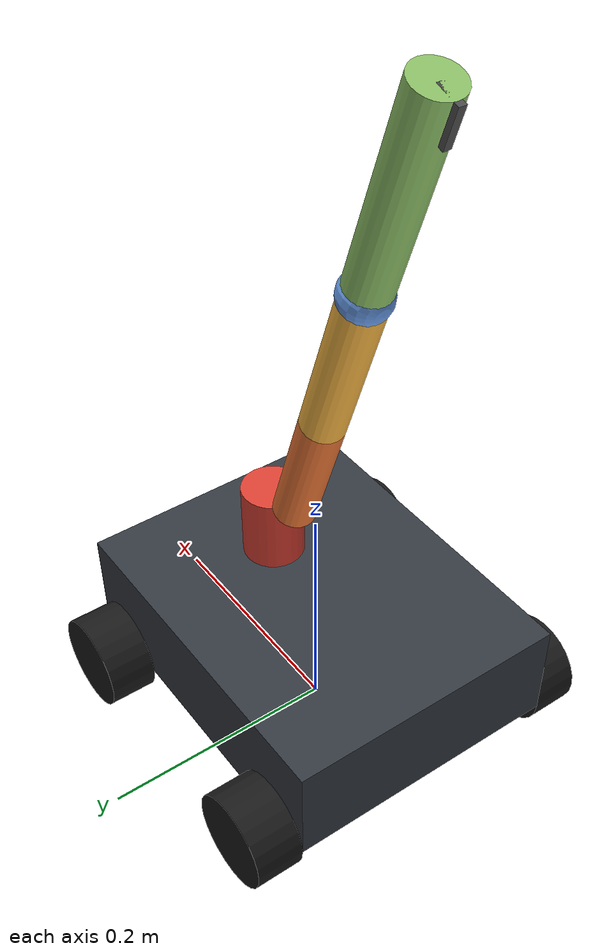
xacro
<?xml version="1.0"?>
<robot xmlns:xacro="http://www.ros.org/wiki/xacro" name="tomato_robot">

  <xacro:arg name="z0_mm" default="119.5"/>
  <xacro:arg name="d0_mm" default="-31.5"/>
  <xacro:arg name="l1_mm" default="116.5"/>
  <xacro:arg name="l2_mm" default="138.0"/>
  <xacro:arg name="l3_mm" default="168.0"/>

  <!-- ── 팔 마운트 (mm, 도) ── 기본값 근거는 위와 같음(so101_geometry.yaml의
       mount.z=76.5 2026-08-31 실측; mount.x=60.0은 아직 미실측 근사치 그대로) -->
  <xacro:arg name="mount_x_mm" default="60.0"/>
  <xacro:arg name="mount_y_mm" default="0.0"/>
  <xacro:arg name="mount_z_mm" default="76.5"/>
  <xacro:arg name="mount_yaw_deg" default="0.0"/>
  <!-- 케이스 회전판(base_yaw) — mount_x/y/z는 **회전판 축**이 지나는 자리이고, 팔(pan 축)은
       거기서 turntable_dx_mm만큼 앞에 앉는다. 0은 미실측(두 축이 같다고 가정).
       한계는 config.BASE_YAW_LIMIT_DEG(소프트), 서보 EEPROM이 ±90°(하드). -->
  <xacro:arg name="turntable_dx_mm" default="0.0"/>
  <xacro:arg name="yaw_limit_deg" default="85.0"/>

  <!-- ── 차체 (mm) ── -->
  <xacro:arg name="base_length_mm" default="300.0"/>
  <xacro:arg name="base_width_mm" default="240.0"/>
  <xacro:arg name="base_height_mm" default="90.0"/>
  <xacro:arg name="wheel_radius_mm" default="40.0"/>

  <!-- ── 관절 한계 (도) ── so101_geometry.yaml:limits_deg 및 NormLimits 실측치 정합화 (T88) -->
  <xacro:arg name="pan_min_deg"   default="-105.27"/>
  <xacro:arg name="pan_max_deg"   default="133.32"/>
  <xacro:arg name="lift_min_deg"  default="7.94"/>
  <xacro:arg name="lift_max_deg"  default="209.59"/>
  <xacro:arg name="elbow_min_deg" default="-38.90"/>
  <xacro:arg name="elbow_max_deg" default="163.61"/>
  <xacro:arg name="wflex_min_deg" default="-99.98"/>
  <xacro:arg name="wflex_max_deg" default="103.64"/>
  <xacro:arg name="wroll_min_deg" default="-97.90"/>
  <xacro:arg name="wroll_max_deg" default="97.90"/>
  <xacro:arg name="grip_min_deg"  default="0.0"/>
  <xacro:arg name="grip_max_deg"  default="45.0"/>

  <xacro:property name="mm" value="0.001"/>
  <xacro:property name="d2r" value="${pi/180.0}"/>

  <xacro:property name="bl" value="${$(arg base_length_mm) * mm}"/>
  <xacro:property name="bw" value="${$(arg base_width_mm) * mm}"/>
  <xacro:property name="bh" value="${$(arg base_height_mm) * mm}"/>
  <xacro:property name="wr" value="${$(arg wheel_radius_mm) * mm}"/>

  <xacro:include filename="$(find tomato_description)/urdf/so101_arm.xacro"/>

  <link name="base_link">
    <visual>
      <origin xyz="0 0 ${bh/2 + wr}"/>
      <geometry><box size="${bl} ${bw} ${bh}"/></geometry>
      <material name="m_chassis"><color rgba="0.2 0.22 0.25 1"/></material>
    </visual>
    <collision>
      <origin xyz="0 0 ${bh/2 + wr}"/>
      <geometry><box size="${bl} ${bw} ${bh}"/></geometry>
    </collision>
    <inertial>
      <mass value="4.0"/>
      <origin xyz="0 0 ${bh/2 + wr}"/>
      <inertia ixx="0.03" ixy="0" ixz="0" iyy="0.05" iyz="0" izz="0.06"/>
    </inertial>
  </link>

  <!-- 바퀴는 **보여 주기만** 한다. 회전 관절로 두지 않는 이유는 엔코더가 없어서
       각도를 알 방법이 없기 때문이다 — 모르는 값을 0으로 발행하면 rviz에서
       "안 구르는 바퀴"가 아니라 "구르지 않는다는 거짓말"이 된다.
       엔코더가 생기면(보드계약 v2 `enc`) 그때 관절로 승격한다. -->
  <xacro:macro name="wheel" params="name x y">
    <link name="${name}">
      <visual>
        <origin xyz="0 0 0" rpy="${pi/2} 0 0"/>
        <geometry><cylinder radius="${wr}" length="0.04"/></geometry>
        <material name="m_wheel"><color rgba="0.1 0.1 0.1 1"/></material>
      </visual>
    </link>
    <joint name="${name}_fixed" type="fixed">
      <parent link="base_link"/>
      <child link="${name}"/>
      <origin xyz="${x} ${y} ${wr}"/>
    </joint>
  </xacro:macro>
  <!-- 모터↔바퀴 실측 대응은 CLAUDE.md에 있다: A=RR B=RL C=FR D=FL -->
  <xacro:wheel name="wheel_fr" x="${ bl/2 - 0.04}" y="${-bw/2 - 0.02}"/>
  <xacro:wheel name="wheel_fl" x="${ bl/2 - 0.04}" y="${ bw/2 + 0.02}"/>
  <xacro:wheel name="wheel_rr" x="${-bl/2 + 0.04}" y="${-bw/2 - 0.02}"/>
  <xacro:wheel name="wheel_rl" x="${-bl/2 + 0.04}" y="${ bw/2 + 0.02}"/>

  <!-- 회전판: base_link → turntable(돈다) → arm_base. 정면(0)에서 예전 고정 마운트와 같다. -->
  <link name="turntable"/>
  <joint name="base_yaw" type="revolute">
    <parent link="base_link"/>
    <child link="turntable"/>
    <origin xyz="${$(arg mount_x_mm)*mm} ${$(arg mount_y_mm)*mm} ${$(arg mount_z_mm)*mm}"
            rpy="0 0 ${$(arg mount_yaw_deg)*d2r}"/>
    <axis xyz="0 0 1"/>
    <limit lower="${-$(arg yaw_limit_deg)*d2r}" upper="${$(arg yaw_limit_deg)*d2r}"
           effort="3.0" velocity="0.6"/>
  </joint>

  <xacro:so101_arm
      prefix=""
      parent="turntable"
      xyz="${$(arg turntable_dx_mm)*mm} 0 0"
      rpy="0 0 0"
      z0="${$(arg z0_mm)*mm}"
      d0="${$(arg d0_mm)*mm}"
      l1="${$(arg l1_mm)*mm}"
      l2="${$(arg l2_mm)*mm}"
      l3="${$(arg l3_mm)*mm}"
      pan_min="${$(arg pan_min_deg)*d2r}"     pan_max="${$(arg pan_max_deg)*d2r}"
      lift_min="${$(arg lift_min_deg)*d2r}"   lift_max="${$(arg lift_max_deg)*d2r}"
      elbow_min="${$(arg elbow_min_deg)*d2r}" elbow_max="${$(arg elbow_max_deg)*d2r}"
      wflex_min="${$(arg wflex_min_deg)*d2r}" wflex_max="${$(arg wflex_max_deg)*d2r}"
      wroll_min="${$(arg wroll_min_deg)*d2r}" wroll_max="${$(arg wroll_max_deg)*d2r}"
      grip_min="${$(arg grip_min_deg)*d2r}"   grip_max="${$(arg grip_max_deg)*d2r}"/>

</robot>

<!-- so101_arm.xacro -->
<robot xmlns:xacro="http://www.ros.org/wiki/xacro">

  <xacro:macro name="so101_arm" params="
      prefix parent
      xyz rpy
      z0 d0 l1 l2 l3
      pan_min pan_max lift_min lift_max elbow_min elbow_max
      wflex_min wflex_max wroll_min wroll_max grip_min grip_max">

    <!-- 관절 힘은 실측한 적이 없다. 여기 값은 **자리표시자**이며 IK/TF에는
         쓰이지 않는다(velocity/effort는 컨트롤러가 볼 때만 의미가 있다). -->
    <xacro:property name="eff" value="10.0"/>
    <xacro:property name="vel" value="3.0"/>
    <xacro:property name="rod_r" value="0.018"/>

    <!-- 관성은 시각화·TF에 쓰이지 않지만, URDF 검사기와 나중의 MoveIt/Gazebo가
         요구한다. 실측이 아니라 "말이 되는 값"이라는 걸 분명히 해 둔다. -->
    <xacro:macro name="dummy_inertial" params="m">
      <inertial>
        <mass value="${m}"/>
        <origin xyz="0 0 0"/>
        <inertia ixx="1e-4" ixy="0" ixz="0" iyy="1e-4" iyz="0" izz="1e-4"/>
      </inertial>
    </xacro:macro>

    <xacro:macro name="rod_visual" params="rod_len mname rgba">
      <visual>
        <origin xyz="${rod_len/2} 0 0" rpy="0 ${pi/2} 0"/>
        <geometry><cylinder radius="${rod_r}" length="${rod_len}"/></geometry>
        <material name="${prefix}m_${mname}"><color rgba="${rgba}"/></material>
      </visual>
      <collision>
        <origin xyz="${rod_len/2} 0 0" rpy="0 ${pi/2} 0"/>
        <geometry><cylinder radius="${rod_r}" length="${rod_len}"/></geometry>
      </collision>
    </xacro:macro>

    <!-- ============ 팔이 앉는 자리 ============ -->
    <link name="${prefix}arm_base">
      <visual>
        <origin xyz="0 0 0.012"/>
        <geometry><box size="0.07 0.07 0.024"/></geometry>
        <material name="${prefix}m_base"><color rgba="0.25 0.25 0.28 1"/></material>
      </visual>
      <xacro:dummy_inertial m="0.3"/>
    </link>
    <joint name="${prefix}arm_mount" type="fixed">
      <parent link="${parent}"/>
      <child link="${prefix}arm_base"/>
      <origin xyz="${xyz}" rpy="${rpy}"/>
    </joint>

    <!-- ============ 1. shoulder_pan ============ -->
    <link name="${prefix}pan_link">
      <visual>
        <origin xyz="0 0 ${z0/2}"/>
        <geometry><cylinder radius="0.026" length="${z0}"/></geometry>
        <material name="${prefix}m_pan"><color rgba="0.85 0.25 0.2 1"/></material>
      </visual>
      <xacro:dummy_inertial m="0.2"/>
    </link>
    <joint name="${prefix}shoulder_pan" type="revolute">
      <parent link="${prefix}arm_base"/>
      <child link="${prefix}pan_link"/>
      <origin xyz="0 0 0"/>
      <axis xyz="0 0 1"/>
      <limit lower="${pan_min}" upper="${pan_max}" effort="${eff}" velocity="${vel}"/>
    </joint>

    <!-- ============ 2. shoulder_lift ============ -->
    <link name="${prefix}upper_arm_link">
      <xacro:rod_visual rod_len="${l1}" mname="upper" rgba="0.9 0.45 0.2 1"/>
      <xacro:dummy_inertial m="0.2"/>
    </link>
    <joint name="${prefix}shoulder_lift" type="revolute">
      <parent link="${prefix}pan_link"/>
      <child link="${prefix}upper_arm_link"/>
      <origin xyz="${d0} 0 ${z0}"/>
      <axis xyz="0 -1 0"/>
      <limit lower="${lift_min}" upper="${lift_max}" effort="${eff}" velocity="${vel}"/>
    </joint>

    <!-- ============ 3. elbow_flex ============ -->
    <link name="${prefix}forearm_link">
      <xacro:rod_visual rod_len="${l2}" mname="fore" rgba="0.95 0.7 0.25 1"/>
      <xacro:dummy_inertial m="0.15"/>
    </link>
    <joint name="${prefix}elbow_flex" type="revolute">
      <parent link="${prefix}upper_arm_link"/>
      <child link="${prefix}forearm_link"/>
      <origin xyz="${l1} 0 0"/>
      <axis xyz="0 -1 0"/>
      <limit lower="${elbow_min}" upper="${elbow_max}" effort="${eff}" velocity="${vel}"/>
    </joint>

    <!-- ============ 4. wrist_flex ============ -->
    <link name="${prefix}wrist_link">
      <visual>
        <origin xyz="0 0 0"/>
        <geometry><sphere radius="0.02"/></geometry>
        <material name="${prefix}m_wrist"><color rgba="0.4 0.6 0.9 1"/></material>
      </visual>
      <xacro:dummy_inertial m="0.08"/>
    </link>
    <joint name="${prefix}wrist_flex" type="revolute">
      <parent link="${prefix}forearm_link"/>
      <child link="${prefix}wrist_link"/>
      <origin xyz="${l2} 0 0"/>
      <axis xyz="0 -1 0"/>
      <limit lower="${wflex_min}" upper="${wflex_max}" effort="${eff}" velocity="${vel}"/>
    </joint>

    <!-- ============ 5. wrist_roll ============ -->
    <link name="${prefix}gripper_link">
      <xacro:rod_visual rod_len="${l3}" mname="grip" rgba="0.55 0.75 0.4 1"/>
      <xacro:dummy_inertial m="0.1"/>
    </link>
    <joint name="${prefix}wrist_roll" type="revolute">
      <parent link="${prefix}wrist_link"/>
      <child link="${prefix}gripper_link"/>
      <origin xyz="0 0 0"/>
      <axis xyz="1 0 0"/>
      <limit lower="${wroll_min}" upper="${wroll_max}" effort="${eff}" velocity="${vel}"/>
    </joint>

    <!-- ============ TCP — **무는 지점**이다 ============
         집게 손끝이 아니라 물건을 무는 곳. kinematics.py의 l3가 여기까지의 길이다.
         이 점이 틀리면 IK가 푼 자세는 맞는데 집게가 열매를 스쳐 지나간다. -->
    <link name="${prefix}tool0">
      <xacro:dummy_inertial m="0.001"/>
    </link>
    <joint name="${prefix}tool0_fixed" type="fixed">
      <parent link="${prefix}gripper_link"/>
      <child link="${prefix}tool0"/>
      <origin xyz="${l3} 0 0"/>
    </joint>

    <!-- ============ 집게 (한 손가락만 관절로) ============
         두 손가락을 대칭으로 모델링하려면 mimic이 필요한데, 지금은 집게 상태를
         **보여 주기만** 하면 되므로 하나로 둔다. 열고 닫는 실제 지령은
         cartesian.set_grip()이 하고, 이 관절은 그 값을 되비추는 표시다. -->
    <link name="${prefix}finger_link">
      <visual>
        <origin xyz="0.015 0 0"/>
        <geometry><box size="0.03 0.006 0.02"/></geometry>
        <material name="${prefix}m_finger"><color rgba="0.3 0.3 0.3 1"/></material>
      </visual>
      <xacro:dummy_inertial m="0.01"/>
    </link>
    <joint name="${prefix}gripper" type="revolute">
      <parent link="${prefix}gripper_link"/>
      <child link="${prefix}finger_link"/>
      <origin xyz="${l3 - 0.03} 0 0.012"/>
      <axis xyz="0 -1 0"/>
      <limit lower="${grip_min}" upper="${grip_max}" effort="${eff}" velocity="${vel}"/>
    </joint>

  </xacro:macro>
</robot>
